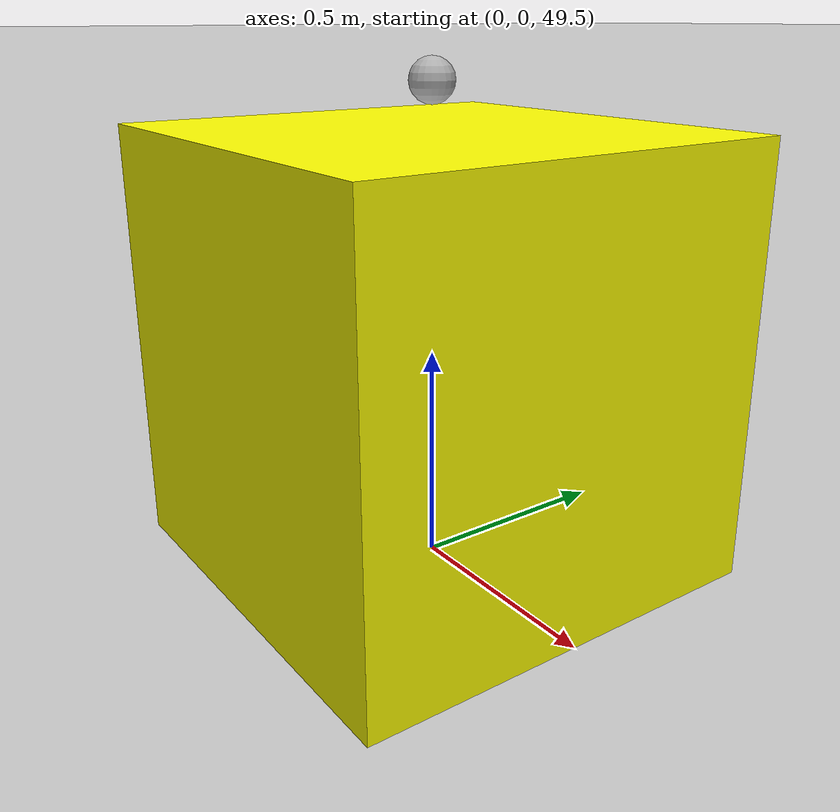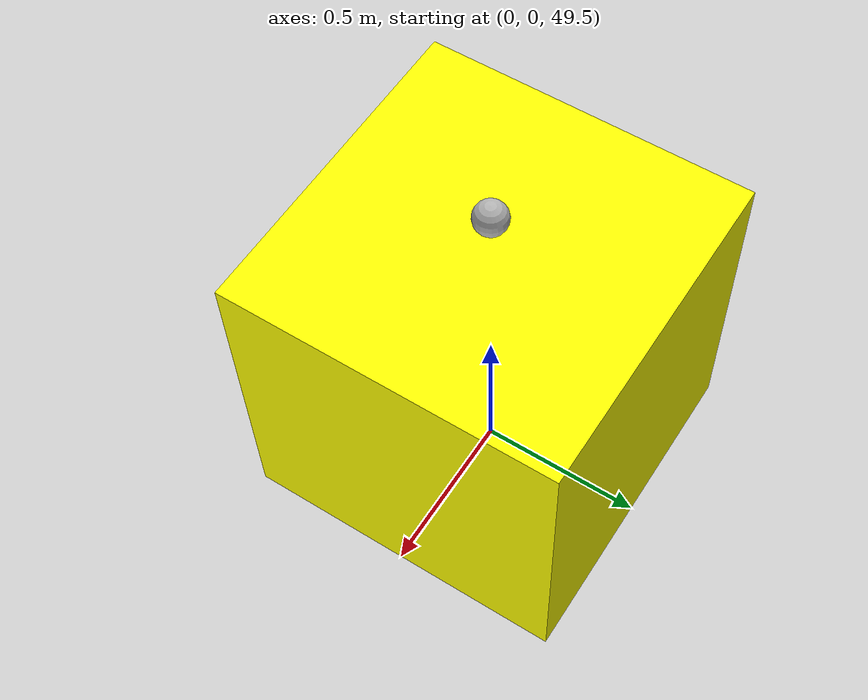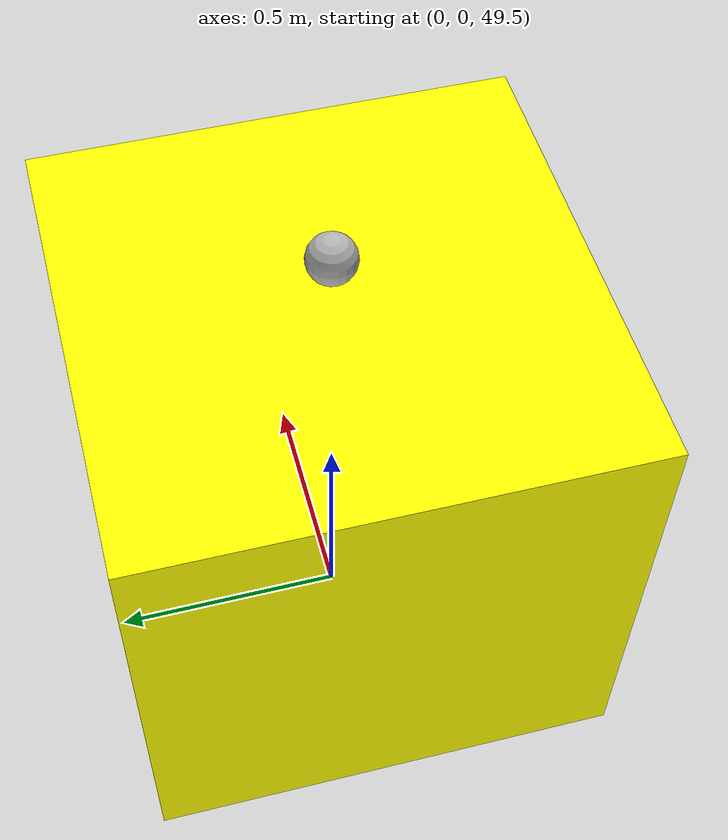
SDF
<?xml version="1.0" ?>
<sdf version="1.9">
  <world name="test_parachute">
    <physics name="1ms" type="ignore">
      <max_step_size>0.001</max_step_size>
      <real_time_factor>0.1</real_time_factor>
    </physics>
    <plugin filename="gz-sim-physics-system"
      name="gz::sim::systems::Physics">
    </plugin>
    <plugin filename="gz-sim-user-commands-system"
      name="gz::sim::systems::UserCommands">
    </plugin>
    <plugin filename="gz-sim-scene-broadcaster-system"
      name="gz::sim::systems::SceneBroadcaster">
    </plugin>

    <scene>
      <ambient>1.0 1.0 1.0</ambient>
      <background>0.8 0.8 0.8</background>
      <sky></sky>
    </scene>

    <light type="directional" name="sun">
      <cast_shadows>true</cast_shadows>
      <pose>0 0 10 0 0 0</pose>
      <diffuse>0.8 0.8 0.8 1</diffuse>
      <specular>0.8 0.8 0.8 1</specular>
      <attenuation>
        <range>1000</range>
        <constant>0.9</constant>
        <linear>0.01</linear>
        <quadratic>0.001</quadratic>
      </attenuation>
      <direction>-0.5 0.1 -0.9</direction>
    </light>

    <include>
      <uri>model://runway</uri>
      <pose degrees="true">-29 545 0 0 0 363</pose>
    </include>

    <model name="payload">
      <pose degrees="true">0 0 50 0 0 90</pose>
      <link name="base_link">
        <inertial>
          <mass>0.25</mass>
          <inertia>
            <ixx>0.000417</ixx>
            <ixy>0.00</ixy>
            <ixz>0.00</ixz>
            <iyy>0.000417</iyy>
            <iyz>0.00</iyz>
            <izz>0.000417</izz>
          </inertia>
        </inertial>
        <visual name="visual">
          <geometry>
            <box>
              <size>1 1 1</size>
            </box>
          </geometry>
          <material>
            <ambient>1 1 0</ambient>
            <diffuse>1 1 0</diffuse>
            <specular>0.1 0.1 0 1</specular>
          </material>
        </visual>
        <collision name="collision">
          <geometry>
            <box>
              <size>1 1 1</size>
            </box>
          </geometry>
        </collision>
      </link>
      <link name="attachment_link">
        <pose>0 0 0.6 0 0 0</pose>
        <inertial>
          <mass>0.025</mass>
          <inertia>
            <ixx>0.0000417</ixx>
            <ixy>0.00</ixy>
            <ixz>0.00</ixz>
            <iyy>0.0000417</iyy>
            <iyz>0.00</iyz>
            <izz>0.0000417</izz>
          </inertia>
        </inertial>
        <visual name="visual">
          <geometry>
            <sphere>
              <radius>0.05</radius>
            </sphere>
          </geometry>
          <material>
            <ambient>0.7 0.7 0.7</ambient>
            <diffuse>0.7 0.7 0.7</diffuse>
            <specular>0.1 0.1 0.1 1</specular>
          </material>
        </visual>
        <collision name="collision">
          <geometry>
            <sphere>
              <radius>0.05</radius>
            </sphere>
          </geometry>
        </collision>
      </link>
      <joint name="attachment_joint" type="ball">
        <child>attachment_link</child>
        <parent>base_link</parent>
      </joint>

      <plugin filename="ParachutePlugin" name="ParachutePlugin">
        <parent_link>attachment_link</parent_link>
        <child_model>parachute_small</child_model>
        <child_link>chute</child_link>
        <child_pose>0 0 0 0 0 0</child_pose>
        <cmd_topic>/parachute/cmd_release</cmd_topic>
      </plugin>

    </model>
  </world>
</sdf>

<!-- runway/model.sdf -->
<sdf version="1.9">
  <model name="runway">
    <static>true</static>
    <link name="link">
      <collision name="collision">
        <geometry>
          <plane>
            <normal>0 0 1</normal>
          </plane>
        </geometry>
      </collision>
      <visual name="runway">
        <pose degrees="true">0 0 0 0 0 90</pose>
        <cast_shadows>false</cast_shadows>
        <geometry>
          <plane>
            <normal>0 0 1</normal>
            <size>1500 100</size>
          </plane>
        </geometry>
        <material>
          <ambient>0.8 0.8 0.8 1</ambient>
          <diffuse>0.8 0.8 0.8 1</diffuse>
          <specular>0.1 0.1 0.1 1</specular>
          <pbr>
            <metal>
              <albedo_map>materials/textures/runway.png</albedo_map>
              <roughness>0.6</roughness>
              <metalness>0</metalness>
            </metal>
          </pbr>
        </material>
      </visual>
      <visual name="airfield">
        <pose>0 0 -0.01 0 0 0</pose>
        <cast_shadows>false</cast_shadows>
        <geometry>
          <mesh>
            <uri>model://runway/meshes/airfield.dae</uri>
          </mesh>
        </geometry>
        <material>
          <ambient>0.8 0.8 0.8 1</ambient>
          <diffuse>0.8 0.8 0.8 1</diffuse>
          <specular>0.1 0.1 0.1 1</specular>
          <pbr>
            <metal>
              <albedo_map>materials/textures/Grass004_2K_Color.jpg</albedo_map>
              <ambient_occlusion_map>materials/textures/Grass004_2K_AmbientOcclusion.jpg</ambient_occlusion_map>
              <normal_map>materials/textures/Grass004_2K_NormalGL.jpg</normal_map>
              <roughness_map>materials/textures/Grass004_2K_Roughness.jpg</roughness_map>
              <roughness>0.6</roughness>
              <metalness>0</metalness>
            </metal>
          </pbr>
        </material>
      </visual>
    </link>
  </model>
</sdf>
